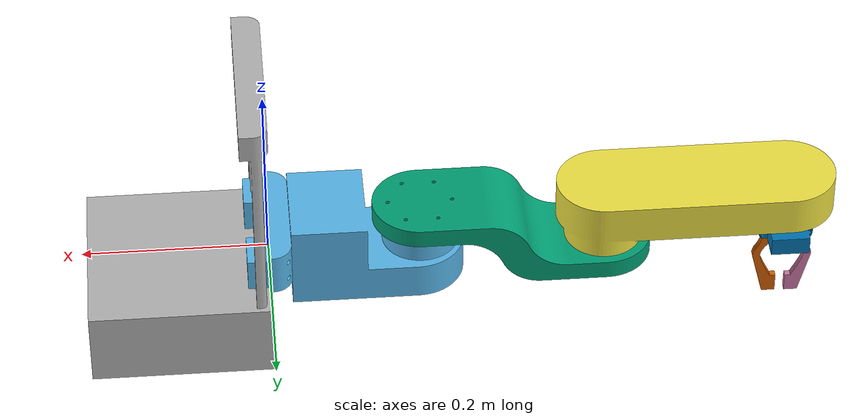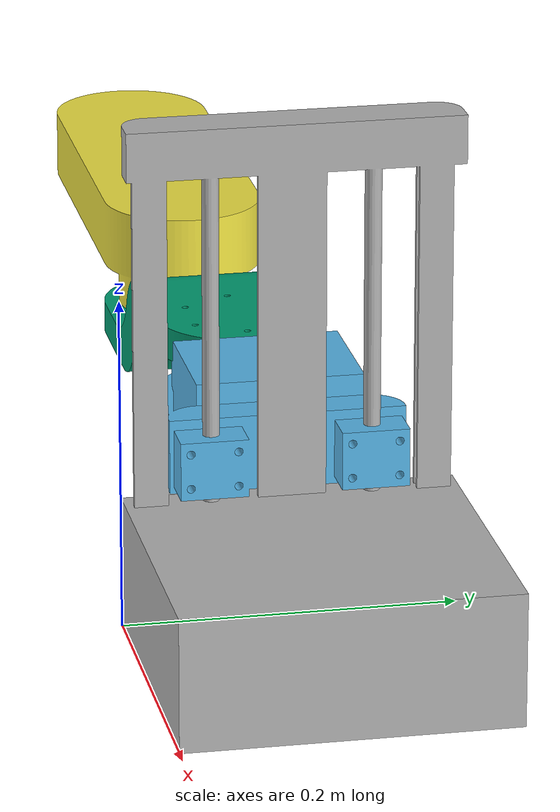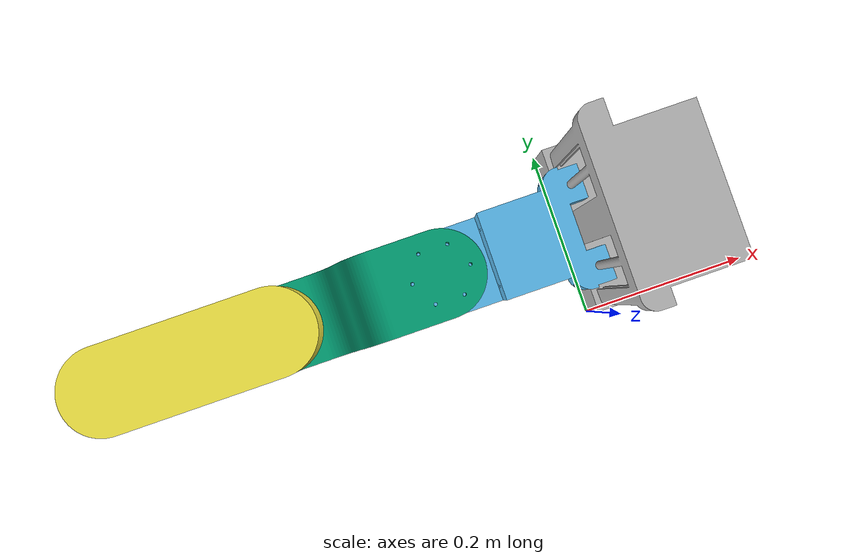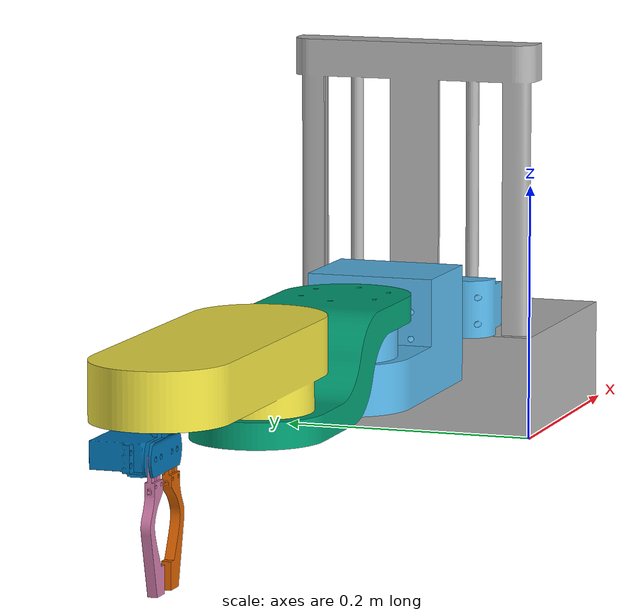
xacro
<?xml version='1.0' encoding='utf-8'?>
<robot name="my_robot">

    <link name="world"/>

    <link name="link_1">
        <inertial>
            <origin xyz="-0.09943063216537529 0.047500000577420105 0.013745800209700967" rpy="0.0 -0.0 0.0" />
            <mass value="5.138448166579201" />
            <inertia ixx="0.008000655991019803" iyy="0.027097061500660838" izz="0.03032628129012202" ixy="1.5057399771478686e-15" iyz="0.0" ixz="-0.0021381416370070405" />
        </inertial>
        <visual name="link_1_visual">
            <origin xyz="-0.012000000000000099 -0.051 -0.150454413483326" rpy="0.0 -0.0 0.0" />
            <geometry>
                <mesh filename="package://my_robot_description/meshes/link_1.stl" scale="0.001 0.001 0.001" />
            </geometry>
        </visual>
        <collision name="link_1_collision">
            <origin xyz="-0.012000000000000099 -0.051 -0.150454413483326" rpy="0.0 -0.0 0.0" />
            <geometry>
                <mesh filename="package://my_robot_description/meshes/link_1.stl" scale="0.001 0.001 0.001" />
            </geometry>
        </collision>
    </link>
    <link name="link_2">
        <inertial>
            <origin xyz="-0.09599999992550096 5.77424206227306e-10 -0.02049999999999942" rpy="0.0 -0.0 0.0" />
            <mass value="5.151950584299963" />
            <inertia ixx="0.007405995372247107" iyy="0.027457556067048583" izz="0.02834185435848674" ixy="-4.163336342344337e-16" iyz="3.122502256758253e-16" ixz="-0.007543664994100918" />
        </inertial>
        <visual name="link_2_visual">
            <origin xyz="0.15699999999999362 -0.0984999999999962 -0.187459413483326" rpy="4.8688791385963534e-20 5.51257397524857e-17 -1.3877787807815e-17" />
            <geometry>
                <mesh filename="package://my_robot_description/meshes/link_2.stl" scale="0.001 0.001 0.001" />
            </geometry>
        </visual>
        <collision name="link_2_collision">
            <origin xyz="0.15699999999999362 -0.0984999999999962 -0.187459413483326" rpy="4.8688791385963534e-20 5.51257397524857e-17 -1.3877787807815e-17" />
            <geometry>
                <mesh filename="package://my_robot_description/meshes/link_2.stl" scale="0.001 0.001 0.001" />
            </geometry>
        </collision>
    </link>
    <link name="link_3">
        <inertial>
            <origin xyz="-0.064027947108072 5.774187528118091e-10 0.03907563886406507" rpy="0.0 -0.0 0.0" />
            <mass value="3.645937615450883" />
            <inertia ixx="0.004951332615527923" iyy="0.02685060308000964" izz="0.02815064665025857" ixy="-2.498001805406602e-16" iyz="-7.510234701663353e-39" ixz="0.0027981441550967157" />
        </inertial>
        <visual name="link_3_visual">
            <origin xyz="0.34900000000001025 -0.09850000000000089 -0.146459413483326" rpy="8.080879188689667e-20 5.50006406069197e-17 -2.77555756156288e-17" />
            <geometry>
                <mesh filename="package://my_robot_description/meshes/link_3.stl" scale="0.001 0.001 0.001" />
            </geometry>
        </visual>
        <collision name="link_3_collision">
            <origin xyz="0.34900000000001025 -0.09850000000000089 -0.146459413483326" rpy="8.080879188689667e-20 5.50006406069197e-17 -2.77555756156288e-17" />
            <geometry>
                <mesh filename="package://my_robot_description/meshes/link_3.stl" scale="0.001 0.001 0.001" />
            </geometry>
        </collision>
    </link>
    <link name="MOTOR">
        <inertial>
            <origin xyz="0.0001025439064554945 -0.020710869174810576 0.017803842536409393" rpy="0.0 -0.0 0.0" />
            <mass value="0.3153222549839674" />
            <inertia ixx="7.523186857745414e-05" iyy="6.597354356158158e-05" izz="0.00011244122418826996" ixy="-9.86539943466369e-07" iyz="2.2830001195376856e-06" ixz="-1.5817770149251231e-09" />
        </inertial>
        <visual name="MOTOR_visual">
            <origin xyz="0.5409908618030053 0.09819415390382714 0.10058025107920593" rpy="-3.141592653589793 6.794391782143219e-69 2.77555756156288e-17" />
            <geometry>
                <mesh filename="package://my_robot_description/meshes/MOTOR.stl" scale="0.001 0.001 0.001" />
            </geometry>
        </visual>
        <collision name="MOTOR_collision">
            <origin xyz="0.5409908618030053 0.09819415390382714 0.10058025107920593" rpy="-3.141592653589793 6.794391782143219e-69 2.77555756156288e-17" />
            <geometry>
                <mesh filename="package://my_robot_description/meshes/MOTOR.stl" scale="0.001 0.001 0.001" />
            </geometry>
        </collision>
    </link>
    <link name="RIGHT-GRIPPER">
        <inertial>
            <origin xyz="0.007172801460332679 0.05227340222184026 0.0015500003241156436" rpy="0.0 -0.0 0.0" />
            <mass value="0.059602499278449475" />
            <inertia ixx="5.34955995701292e-05" iyy="2.907698234570766e-06" izz="5.59475383633129e-05" ixy="-3.5441773694382204e-07" iyz="-1.2233838887678455e-12" ixz="-3.1467536909524085e-13" />
        </inertial>
        <visual name="RIGHT-GRIPPER_visual">
            <origin xyz="0.5309408615674382 0.08258025104192143 -0.09664415390382716" rpy="1.5707963267948966 5.490465915212523e-88 -2.2428945336243715e-36" />
            <geometry>
                <mesh filename="package://my_robot_description/meshes/RIGHT-GRIPPER.stl" scale="0.001 0.001 0.001" />
            </geometry>
        </visual>
        <collision name="RIGHT-GRIPPER_collision">
            <origin xyz="0.5309408615674382 0.08258025104192143 -0.09664415390382716" rpy="1.5707963267948966 5.490465915212523e-88 -2.2428945336243715e-36" />
            <geometry>
                <mesh filename="package://my_robot_description/meshes/RIGHT-GRIPPER.stl" scale="0.001 0.001 0.001" />
            </geometry>
        </collision>
    </link>
    <link name="LEFT-GRIPPER">
        <inertial>
            <origin xyz="-0.0071277282683114155 0.05231890918217049 0.0015500003177138844" rpy="0.0 -0.0 0.0" />
            <mass value="0.05968607020496352" />
            <inertia ixx="5.36163386492711e-05" iyy="2.9083052599937487e-06" izz="5.6068182278202344e-05" ixy="3.0731453485948433e-07" iyz="-1.2384943602356674e-12" ixz="3.1712089551549916e-13" />
        </inertial>
        <visual name="LEFT-GRIPPER_visual">
            <origin xyz="0.5510408616136452 0.08258025081845549 -0.09664415390369603" rpy="1.5707963267948966 5.490465915212523e-88 -2.2428945336243715e-36" />
            <geometry>
                <mesh filename="package://my_robot_description/meshes/LEFT-GRIPPER.stl" scale="0.001 0.001 0.001" />
            </geometry>
        </visual>
        <collision name="LEFT-GRIPPER_collision">
            <origin xyz="0.5510408616136452 0.08258025081845549 -0.09664415390369603" rpy="1.5707963267948966 5.490465915212523e-88 -2.2428945336243715e-36" />
            <geometry>
                <mesh filename="package://my_robot_description/meshes/LEFT-GRIPPER.stl" scale="0.001 0.001 0.001" />
            </geometry>
        </collision>
    </link>
    <link name="base_link">
        <inertial>
            <origin xyz="0.04510230165460346 0.0984999710333165 0.09461313300340858" rpy="0.0 0.0 0.0" />
            <mass value="8.265034673577578" />
            <inertia ixx="0.11398851429781989" iyy="0.10917707896694953" izz="0.05621229396498818" ixy="-8.297323078609864e-09" iyz="2.0442524728547795e-08" ixz="0.014048243532495123" />
        </inertial>
        <visual name="base_link_visual">
            <origin xyz="0.0 0.0 0.0" rpy="0.0 0.0 0.0" />
            <geometry>
                <mesh filename="package://my_robot_description/meshes/base_link.stl" scale="0.001 0.001 0.001" />
            </geometry>
        </visual>
        <collision name="base_link_collision">
            <origin xyz="0.0 0.0 0.0" rpy="0.0 0.0 0.0" />
            <geometry>
                <mesh filename="package://my_robot_description/meshes/base_link.stl" scale="0.001 0.001 0.001" />
            </geometry>
        </collision>
    </link>

    <joint name="world_to_base" type="fixed">
        <origin xyz="0 0 0" rpy="0 0 0"/>
        <parent link="world"/>
        <child link="base_link"/>
    </joint>
    <joint name="base_link_Slider-13" type="prismatic">
        <origin xyz="0.012 0.051 0.08" rpy="0.0 -0.0 0.0" />
        <parent link="base_link" />
        <child link="link_1" />
        <axis xyz="0.0 0.0 1.0" />
        <limit lower="0.0" upper="0.15" effort="1000000" velocity="1000000" />
    </joint>
    <joint name="link_1_Revolute-14" type="revolute">
        <origin xyz="-0.16899999999999998 0.0475 0.037005" rpy="0.0 -0.0 0.0" />
        <parent link="link_1" />
        <child link="link_2" />
        <axis xyz="0.0 0.0 1.0" />
        <limit lower="-1.570796" upper="1.570796" effort="1000000" velocity="1000000" />
    </joint>
    <joint name="link_2_Revolute-15" type="revolute">
        <origin xyz="-0.192 0.0 -0.040999999999999995" rpy="0.0 -0.0 -2.6840056428056933e-36" />
        <parent link="link_2" />
        <child link="link_3" />
        <axis xyz="0.0 0.0 1.0" />
        <limit lower="-1.570796" upper="1.570796" effort="1000000" velocity="1000000" />
    </joint>
    <joint name="link_3_Revolute-16" type="revolute">
        <origin xyz="-0.19200000000000003 0.0 0.024605" rpy="3.141592653589793 -0.0 -1.7605296776448786e-36" />
        <parent link="link_3" />
        <child link="MOTOR" />
        <axis xyz="-0.0 -0.0 1.0" />
        <limit lower="0.0" upper="6.283185" effort="1000000" velocity="1000000" />
    </joint>
    <joint name="MOTOR_Revolute-17" type="revolute">
        <origin xyz="0.010050000000000026 0.0023000000000000043 0.01800000000000001" rpy="1.5707963267948966 6.794391782143219e-69 -4.444535320450572e-36" />
        <parent link="MOTOR" />
        <child link="RIGHT-GRIPPER" />
        <axis xyz="5.490465915212523e-88 0.0 1.0" />
        <limit lower="-0.785398" upper="0.0" effort="1000000" velocity="1000000" />
    </joint>
    <joint name="MOTOR_Revolute-18" type="revolute">
        <origin xyz="-0.010049999999999955 0.0015499999999999937 0.01800000000000001" rpy="1.5707963267948966 6.794391782143219e-69 -4.444535320450572e-36" />
        <parent link="MOTOR" />
        <child link="LEFT-GRIPPER" />
        <axis xyz="5.490465915212523e-88 0.0 1.0" />
        <limit lower="0.0" upper="0.785398" effort="1000000" velocity="1000000" />
        <mimic joint="MOTOR_Revolute-17" multiplier="-1.0" offset="0.0"/>
    </joint>
</robot>
